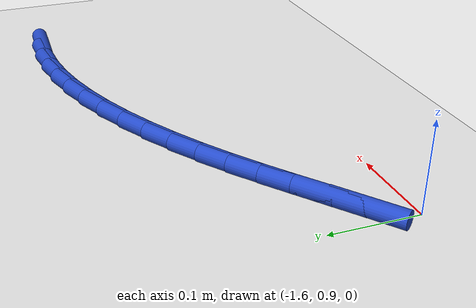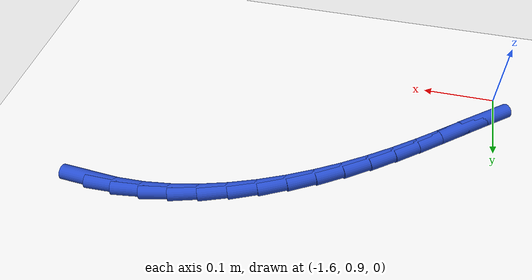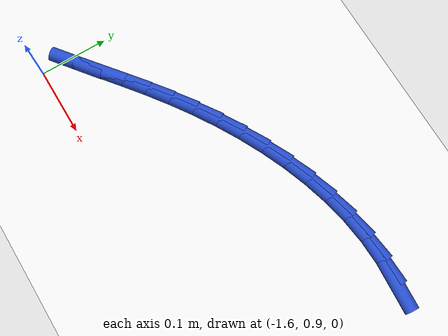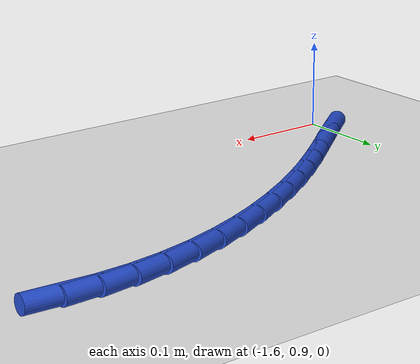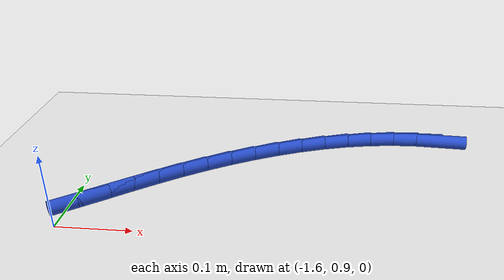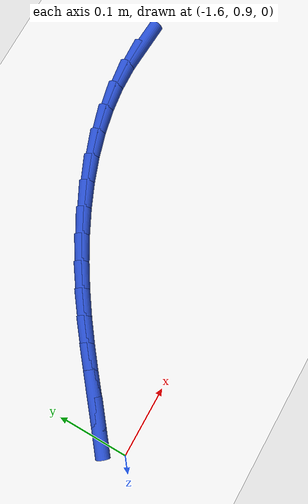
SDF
<sdf version="1.6">
 <world name="default">
  <model name="ground_plane">
   <static>1</static>
   <link name="link">
    <collision name="collision">
     <geometry><plane><normal>0 0 1</normal><size>100 100</size></plane></geometry>
     <surface><friction><ode><mu>100</mu><mu2>50</mu2></ode></friction></surface>
    </collision>
    <visual name="visual">
     <cast_shadows>0</cast_shadows>
     <geometry><plane><normal>0 0 1</normal><size>100 100</size></plane></geometry>
     <material>
      <script><uri>file://media/materials/scripts/gazebo.material</uri><name>Gazebo/WhiteGlow</name></script>
     </material>
    </visual>
   </link>
  </model>
  <model name="line">
   <link name="link_47">
    <pose>-1.0897040495335966 1.1630467752615208 0.01 0 1.57 -0.06533915718364516</pose>
    <collision name="collision">
     <geometry><cylinder><radius>0.01</radius><length>0.08</length></cylinder></geometry>
    </collision>
    <visual name="visual">
     <material>
      <script><name>Gazebo/Blue</name><uri>file://media/materials/scripts/gazebo.material</uri></script>
     </material>
     <geometry><cylinder><radius>0.01</radius><length>0.08</length></cylinder></geometry>
    </visual>
   </link>
   <link name="link_48">
    <pose>-1.1256421204640559 1.1653982858403324 0.01 0 1.57 0.03356379665422837</pose>
    <collision name="collision">
     <geometry><cylinder><radius>0.01</radius><length>0.08</length></cylinder></geometry>
    </collision>
    <visual name="visual">
     <material>
      <script><name>Gazebo/Blue</name><uri>file://media/materials/scripts/gazebo.material</uri></script>
     </material>
     <geometry><cylinder><radius>0.01</radius><length>0.08</length></cylinder></geometry>
    </visual>
   </link>
   <link name="link_49">
    <pose>-1.1617233136616791 1.1641868090536158 0.01 0 1.57 0.12407549557857325</pose>
    <collision name="collision">
     <geometry><cylinder><radius>0.01</radius><length>0.08</length></cylinder></geometry>
    </collision>
    <visual name="visual">
     <material>
      <script><name>Gazebo/Blue</name><uri>file://media/materials/scripts/gazebo.material</uri></script>
     </material>
     <geometry><cylinder><radius>0.01</radius><length>0.08</length></cylinder></geometry>
    </visual>
   </link>
   <link name="link_50">
    <pose>-1.197804948557244 1.1596868466885155 0.01 0 1.57 0.2060781897681865</pose>
    <collision name="collision">
     <geometry><cylinder><radius>0.01</radius><length>0.08</length></cylinder></geometry>
    </collision>
    <visual name="visual">
     <material>
      <script><name>Gazebo/Blue</name><uri>file://media/materials/scripts/gazebo.material</uri></script>
     </material>
     <geometry><cylinder><radius>0.01</radius><length>0.08</length></cylinder></geometry>
    </visual>
   </link>
   <link name="link_51">
    <pose>-1.2337443893853823 1.1521738549837128 0.01 0 1.57 0.2799463031057654</pose>
    <collision name="collision">
     <geometry><cylinder><radius>0.01</radius><length>0.08</length></cylinder></geometry>
    </collision>
    <visual name="visual">
     <material>
      <script><name>Gazebo/Blue</name><uri>file://media/materials/scripts/gazebo.material</uri></script>
     </material>
     <geometry><cylinder><radius>0.01</radius><length>0.08</length></cylinder></geometry>
    </visual>
   </link>
   <link name="link_52">
    <pose>-1.2693990003807276 1.1419232901778882 0.01 0 1.57 0.3463321242342434</pose>
    <collision name="collision">
     <geometry><cylinder><radius>0.01</radius><length>0.08</length></cylinder></geometry>
    </collision>
    <visual name="visual">
     <material>
      <script><name>Gazebo/Blue</name><uri>file://media/materials/scripts/gazebo.material</uri></script>
     </material>
     <geometry><cylinder><radius>0.01</radius><length>0.08</length></cylinder></geometry>
    </visual>
   </link>
   <link name="link_53">
    <pose>-1.3046261457779105 1.1292106085097222 0.01 0 1.57 0.4060204560098023</pose>
    <collision name="collision">
     <geometry><cylinder><radius>0.01</radius><length>0.08</length></cylinder></geometry>
    </collision>
    <visual name="visual">
     <material>
      <script><name>Gazebo/Blue</name><uri>file://media/materials/scripts/gazebo.material</uri></script>
     </material>
     <geometry><cylinder><radius>0.01</radius><length>0.08</length></cylinder></geometry>
    </visual>
   </link>
   <link name="link_54">
    <pose>-1.3392831898115654 1.1143112662178951 0.01 0 1.57 0.45983160916772725</pose>
    <collision name="collision">
     <geometry><cylinder><radius>0.01</radius><length>0.08</length></cylinder></geometry>
    </collision>
    <visual name="visual">
     <material>
      <script><name>Gazebo/Blue</name><uri>file://media/materials/scripts/gazebo.material</uri></script>
     </material>
     <geometry><cylinder><radius>0.01</radius><length>0.08</length></cylinder></geometry>
    </visual>
   </link>
   <link name="link_55">
    <pose>-1.3732274967163227 1.0975007195410875 0.01 0 1.57 0.5085650074513908</pose>
    <collision name="collision">
     <geometry><cylinder><radius>0.01</radius><length>0.08</length></cylinder></geometry>
    </collision>
    <visual name="visual">
     <material>
      <script><name>Gazebo/Blue</name><uri>file://media/materials/scripts/gazebo.material</uri></script>
     </material>
     <geometry><cylinder><radius>0.01</radius><length>0.08</length></cylinder></geometry>
    </visual>
   </link>
   <link name="link_56">
    <pose>-1.4063164307268157 1.0790544247179805 0.01 0 1.57 0.5529721793952591</pose>
    <collision name="collision">
     <geometry><cylinder><radius>0.01</radius><length>0.08</length></cylinder></geometry>
    </collision>
    <visual name="visual">
     <material>
      <script><name>Gazebo/Blue</name><uri>file://media/materials/scripts/gazebo.material</uri></script>
     </material>
     <geometry><cylinder><radius>0.01</radius><length>0.08</length></cylinder></geometry>
    </visual>
   </link>
   <link name="link_57">
    <pose>-1.438407356077677 1.0592478379872543 0.01 0 1.57 0.5937478151766642</pose>
    <collision name="collision">
     <geometry><cylinder><radius>0.01</radius><length>0.08</length></cylinder></geometry>
    </collision>
    <visual name="visual">
     <material>
      <script><name>Gazebo/Blue</name><uri>file://media/materials/scripts/gazebo.material</uri></script>
     </material>
     <geometry><cylinder><radius>0.01</radius><length>0.08</length></cylinder></geometry>
    </visual>
   </link>
   <link name="link_58">
    <pose>-1.4693577332806766 1.0383564167907042 0.01 0 1.57 0.6296830662646028</pose>
    <collision name="collision">
     <geometry><cylinder><radius>0.01</radius><length>0.08</length></cylinder></geometry>
    </collision>
    <visual name="visual">
     <material>
      <script><name>Gazebo/Blue</name><uri>file://media/materials/scripts/gazebo.material</uri></script>
     </material>
     <geometry><cylinder><radius>0.01</radius><length>0.08</length></cylinder></geometry>
    </visual>
   </link>
   <link name="link_59">
    <pose>-1.4991388201825755 1.0166570406240547 0.01 0 1.57 0.6553149558138475</pose>
    <collision name="collision">
     <geometry><cylinder><radius>0.01</radius><length>0.08</length></cylinder></geometry>
    </collision>
    <visual name="visual">
     <material>
      <script><name>Gazebo/Blue</name><uri>file://media/materials/scripts/gazebo.material</uri></script>
     </material>
     <geometry><cylinder><radius>0.01</radius><length>0.08</length></cylinder></geometry>
    </visual>
   </link>
   <link name="link_60">
    <pose>-1.5280557544005724 0.9944307612691332 0.01 0 1.57 0.6690573040249587</pose>
    <collision name="collision">
     <geometry><cylinder><radius>0.01</radius><length>0.08</length></cylinder></geometry>
    </collision>
    <visual name="visual">
     <material>
      <script><name>Gazebo/Blue</name><uri>file://media/materials/scripts/gazebo.material</uri></script>
     </material>
     <geometry><cylinder><radius>0.01</radius><length>0.08</length></cylinder></geometry>
    </visual>
   </link>
   <link name="link_61">
    <pose>-1.5564745919502936 0.971959391766787 0.01 0 1.57 0.6705278611593852</pose>
    <collision name="collision">
     <geometry><cylinder><radius>0.01</radius><length>0.08</length></cylinder></geometry>
    </collision>
    <visual name="visual">
     <material>
      <script><name>Gazebo/Blue</name><uri>file://media/materials/scripts/gazebo.material</uri></script>
     </material>
     <geometry><cylinder><radius>0.01</radius><length>0.08</length></cylinder></geometry>
    </visual>
   </link>
   <link name="link_62">
    <pose>-1.5847613888473686 0.9495247451578651 0.01 0 1.57 0.6595834138137379</pose>
    <collision name="collision">
     <geometry><cylinder><radius>0.01</radius><length>0.08</length></cylinder></geometry>
    </collision>
    <visual name="visual">
     <material>
      <script><name>Gazebo/Blue</name><uri>file://media/materials/scripts/gazebo.material</uri></script>
     </material>
     <geometry><cylinder><radius>0.01</radius><length>0.08</length></cylinder></geometry>
    </visual>
   </link>
  </model>
 </world>
</sdf>
